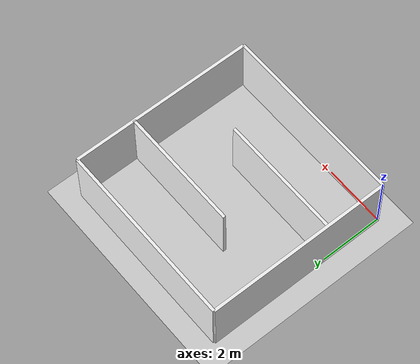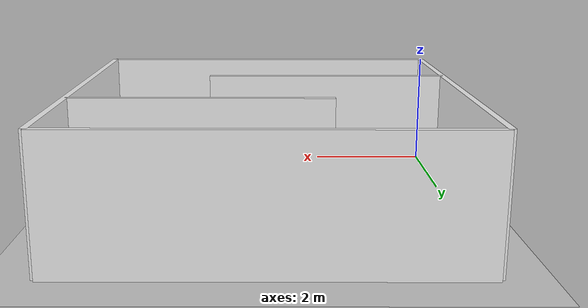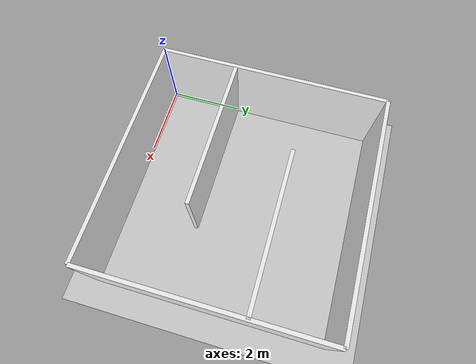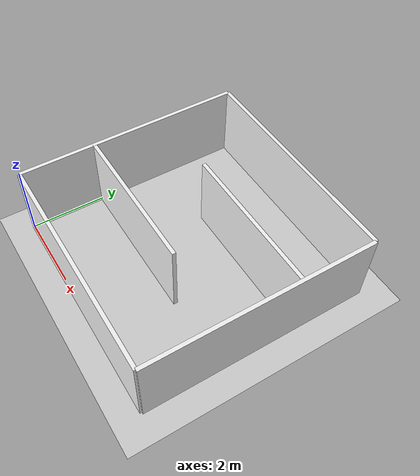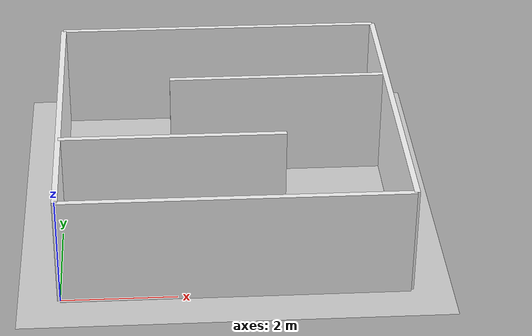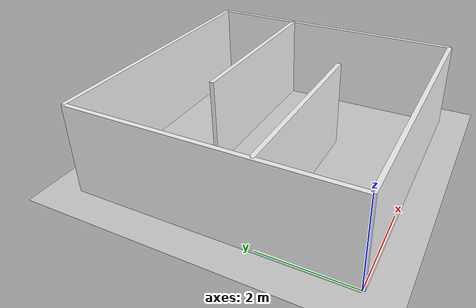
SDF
<?xml version="1.0" ?>
<sdf version="1.6">
  <world name="default">
    <include>
      <uri>model://ground_plane</uri>
    </include>
    <include>
      <uri>model://sun</uri>
    </include>

    <model name="wall1">
    <pose>2 2 1 0 0 0</pose> <!-- x y z roll pitch yaw -->
    <static>true</static>
    <link name="link">
      <collision name="collision">
        <geometry>
          <box>
            <size>4 0.1 2</size> <!-- length, width, height -->
          </box>
        </geometry>
      </collision>
      <visual name="visual">
        <geometry>
          <box>
            <size>4 0.1 2</size>
          </box>
        </geometry>
        <material>
          <ambient>0.95 0.95 0.95 1</ambient>
          <diffuse>0.95 0.95 0.95 1</diffuse>
          <specular>0.1 0.1 0.1 1</specular>
        </material>
      </visual>
    </link>
  </model>

  <model name="wall2">
    <pose>4 4 1 0 0 0</pose> <!-- x y z roll pitch yaw -->
    <static>true</static>
    <link name="link">
      <collision name="collision">
        <geometry>
          <box>
            <size>4 0.1 2</size> <!-- length, width, height -->
          </box>
        </geometry>
      </collision>
      <visual name="visual">
        <geometry>
          <box>
            <size>4 0.1 2</size>
          </box>
        </geometry>
        <material>
          <ambient>0.95 0.95 0.95 1</ambient>
          <diffuse>0.95 0.95 0.95 1</diffuse>
          <specular>0.1 0.1 0.1 1</specular>
        </material>
      </visual>
    </link>
  </model>

  <model name="wall3">
    <pose>3 0 1 0 0 0</pose> <!-- x y z roll pitch yaw -->
    <static>true</static>
    <link name="link">
      <collision name="collision">
        <geometry>
          <box>
            <size>6 0.1 2</size> <!-- length, width, height -->
          </box>
        </geometry>
      </collision>
      <visual name="visual">
        <geometry>
          <box>
            <size>6 0.1 2</size>
          </box>
        </geometry>
        <material>
          <ambient>0.95 0.95 0.95 1</ambient>
          <diffuse>0.95 0.95 0.95 1</diffuse>
          <specular>0.1 0.1 0.1 1</specular>
        </material>
      </visual>
    </link>
  </model>

  <model name="wall4">
    <pose>3 6 1 0 0 0</pose> <!-- x y z roll pitch yaw -->
    <static>true</static>
    <link name="link">
      <collision name="collision">
        <geometry>
          <box>
            <size>6 0.1 2</size> <!-- length, width, height -->
          </box>
        </geometry>
      </collision>
      <visual name="visual">
        <geometry>
          <box>
            <size>6 0.1 2</size>
          </box>
        </geometry>
        <material>
          <ambient>0.95 0.95 0.95 1</ambient>
          <diffuse>0.95 0.95 0.95 1</diffuse>
          <specular>0.1 0.1 0.1 1</specular>
        </material>
      </visual>
    </link>
  </model>

  <model name="wall5">
    <pose>0 3 1 0 0 1.5708</pose> <!-- x y z roll pitch yaw -->
    <static>true</static>
    <link name="link">
      <collision name="collision">
        <geometry>
          <box>
            <size>6 0.1 2</size> <!-- length, width, height -->
          </box>
        </geometry>
      </collision>
      <visual name="visual">
        <geometry>
          <box>
            <size>6 0.1 2</size>
          </box>
        </geometry>
        <material>
          <ambient>0.95 0.95 0.95 1</ambient>
          <diffuse>0.95 0.95 0.95 1</diffuse>
          <specular>0.1 0.1 0.1 1</specular>
        </material>
      </visual>
    </link>
  </model>

  <model name="wall6">
    <pose>6 3 1 0 0 1.5708</pose> <!-- x y z roll pitch yaw -->
    <static>true</static>
    <link name="link">
      <collision name="collision">
        <geometry>
          <box>
            <size>6 0.1 2</size> <!-- length, width, height -->
          </box>
        </geometry>
      </collision>
      <visual name="visual">
        <geometry>
          <box>
            <size>6 0.1 2</size>
          </box>
        </geometry>
        <material>
          <ambient>0.95 0.95 0.95 1</ambient>
          <diffuse>0.95 0.95 0.95 1</diffuse>
          <specular>0.1 0.1 0.1 1</specular>
        </material>
      </visual>
    </link>
  </model>
  </world>
</sdf>
